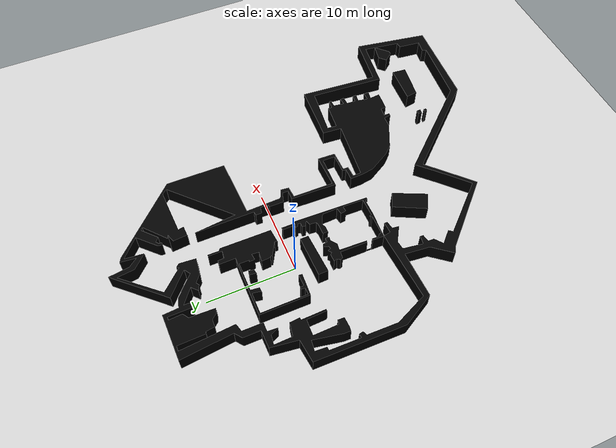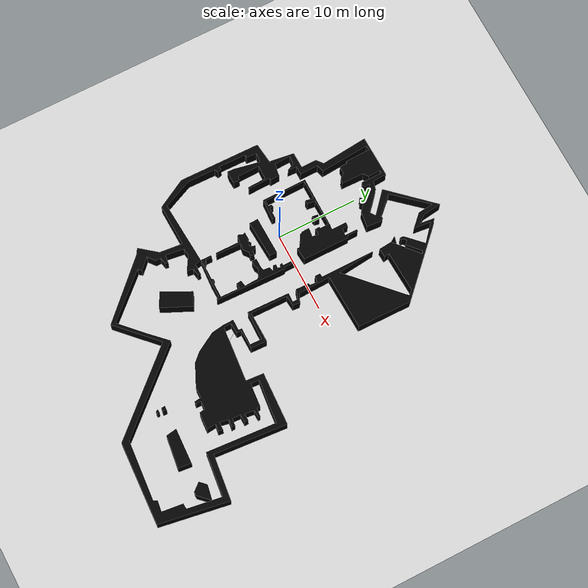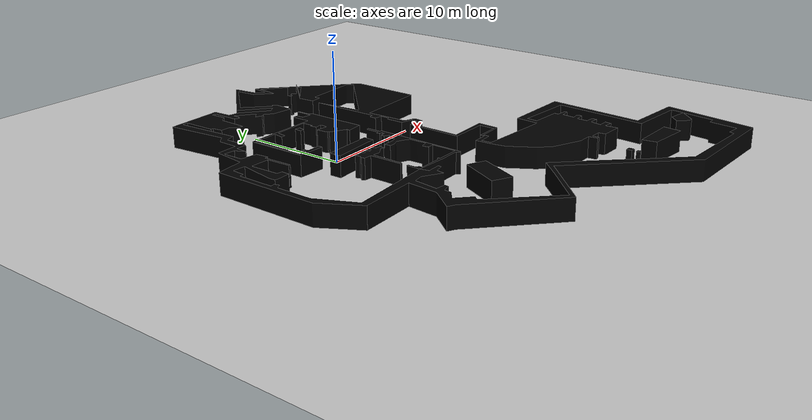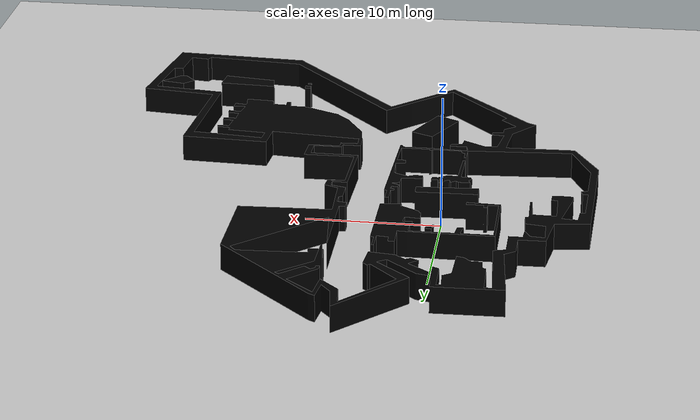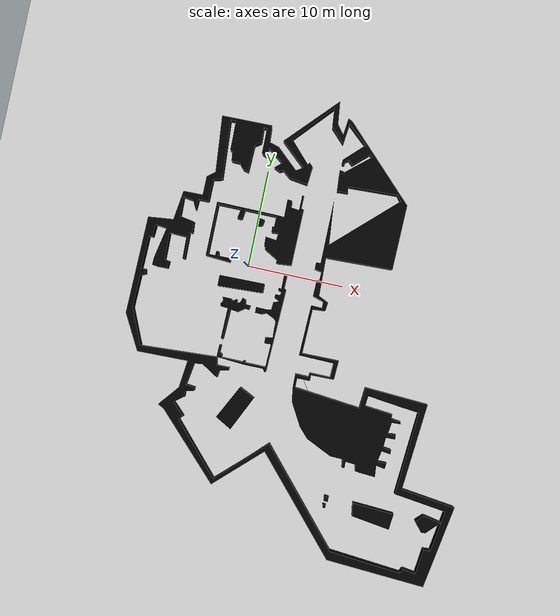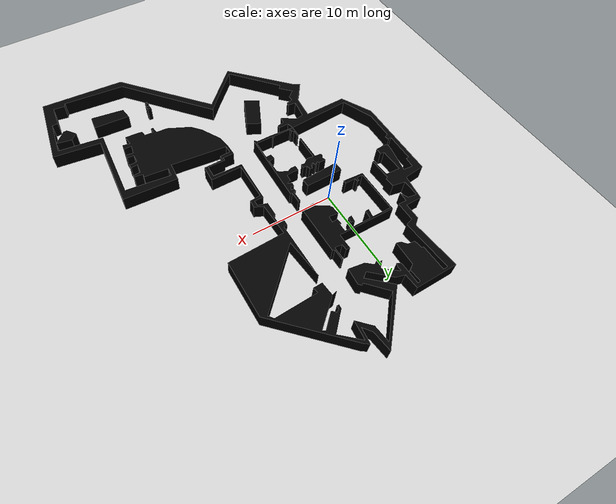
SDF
<?xml version="1.0"?>
<sdf version="1.4">
<world name="indoor_environment">

  <scene>
    <ambient>0.5 0.5 0.5 1.0</ambient>
    <shadows>0</shadows>
  </scene>
  <physics type='ode'>
    <real_time_update_rate>1000</real_time_update_rate>
    <max_step_size>0.001</max_step_size>
    <ode>
	<solver>
           <friction_model>cone_model</friction_model>
        </solver>
  	<constraints>
	  <cfm>0.001</cfm>
	  <erp>1</erp>
	</constraints>
    </ode>
   </physics>
  <include>
    <uri>model://sun</uri>
    <pose>0.0 0.0 15.0 0 0 0</pose>
    <cast_shadows>false</cast_shadows>
    <attenuation>
      <constant>0.5</constant>
      <linear>0.01</linear>
      <quadratic>0.0</quadratic>
      <range>100</range>
    </attenuation>
  </include>

  <include>
    <uri>model://indoor_environment</uri>
    <static>true</static>
    <pose>0 0 0 0 0 0</pose>
    <name>indoor_environment</name>
  </include>

 <model name="ground_plane">
    <static>true</static>
    <link name="link">
      <collision name="collision">
        <geometry>
          <plane>
            <normal>0 0 1</normal>
            <size>150 150</size>
          </plane>
        </geometry>
        <surface>
          <friction>
            <ode>
              <mu>1000</mu>
              <mu2>1000</mu2>
            </ode>
          </friction>
        </surface>
      </collision>
      <visual name="visual">
        <cast_shadows>false</cast_shadows>
        <geometry>
          <plane>
            <normal>0 0 1</normal>
            <size>150 150</size>
          </plane>
        </geometry>
        <material>
          <script>
            <uri>file://media/materials/scripts/gazebo.material</uri>
            <name>Gazebo/Grey </name>
          </script>
        </material>
      </visual>
    </link>
  </model>

</world>
</sdf>

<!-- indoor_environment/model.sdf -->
<sdf version='1.4'>
  <model name="indoor_environment">
    <link name="link">
      <collision name="collision">
        <pose>0.0 -9.0 0.0 0.0 0.0 0.0</pose>
        <geometry>
          <mesh>
            <scale>0.8 0.8 1</scale>
            <uri>model://indoor_environment/indoor_environment.dae</uri>

	  </mesh>
        </geometry>
      </collision>
      <visual name="visual">
        <pose>0.0 -9.0 0.0 0.0 0.0 0.0</pose>
        <geometry>
          <mesh>
            <scale>0.8 0.8 1</scale>
            <uri>model://indoor_environment/indoor_environment.dae</uri>
          </mesh>
        </geometry>
      </visual>
    </link>
    <static>1</static>
  </model>
</sdf>
